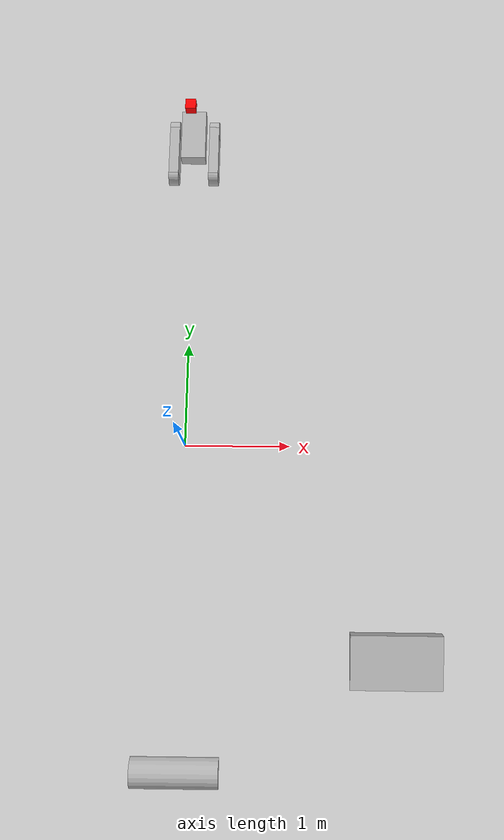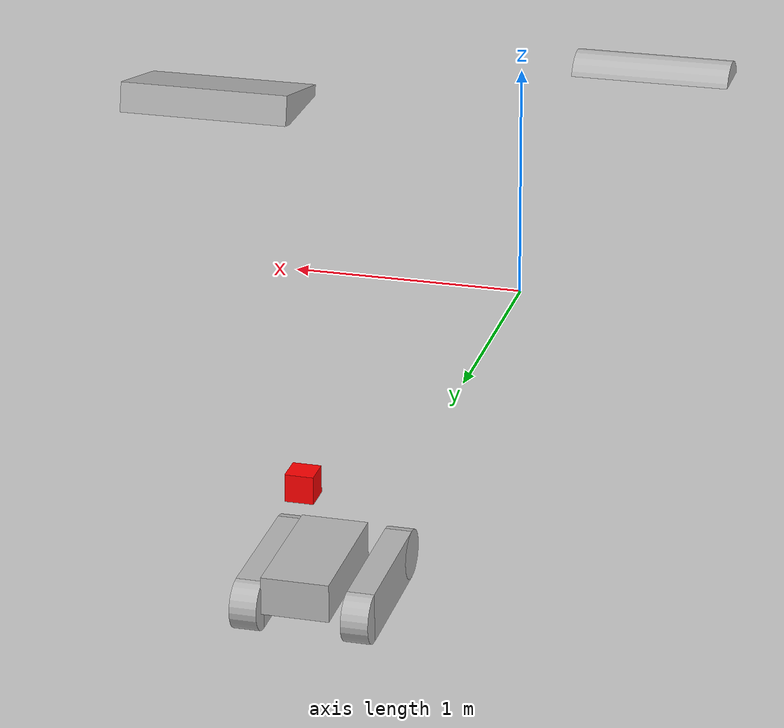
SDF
<?xml version="1.0" ?>
<sdf version="1.6">
    <world name="default">
        <gui>
            <plugin name="keyboard" filename="libKeyboardGUIPlugin.so"/>
        </gui>

        <include>
            <uri>model://sun</uri>
        </include>

        <include>
            <uri>model://ground_plane</uri>
        </include>

        <include>
            <uri>model://simple_tracked</uri>
        </include>

        <model name="cylinder_obstacle">
            <static>true</static>
            <pose>0 -3 -0.06 0 0 0</pose>
            <link name="cylinder">
                <collision name="cylinder_collision">
                    <pose frame="">0 0 0 0 1.570796327 0</pose>
                    <geometry>
                        <cylinder>
                            <radius>0.15</radius>
                            <length>0.8</length>
                        </cylinder>
                    </geometry>
                    <surface>
                        <friction>
                            <ode>
                                <mu>1</mu>
                            </ode>
                        </friction>
                    </surface>
                </collision>
                <visual name="cylinder_visual">
                    <pose frame="">0 0 0 0 1.570796327 0</pose>
                    <geometry>
                        <cylinder>
                            <radius>0.15</radius>
                            <length>0.8</length>
                        </cylinder>
                    </geometry>
                </visual>
            </link>
        </model>

        <model name="box_obstacle">
            <static>true</static>
            <pose>2 -2 0.028 1.7821 0 0</pose>
            <link name="box">
                <collision name="box_collision">
                    <pose frame="">0 0 0 0 0 0</pose>
                    <geometry>
                        <box>
                            <size>0.85 0.15 0.50</size>
                        </box>
                    </geometry>
                    <surface>
                        <friction>
                            <ode>
                                <mu>1</mu>
                            </ode>
                        </friction>
                    </surface>
                </collision>
                <visual name="box_visual">
                    <pose frame="">0 0 0 0 0 0</pose>
                    <geometry>
                        <box>
                            <size>0.85 0.15 0.50</size>
                        </box>
                    </geometry>
                </visual>
            </link>
        </model>
    </world>
</sdf>

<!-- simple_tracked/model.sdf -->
<sdf version="1.6">

    <model name="simple_tracked">

        <pose frame=''>0 3 0.1 0 0 -1.5708</pose>

        <link name='base_link'>
            <pose frame=''>0 0 0  0 0 0</pose>
            <inertial>
                <pose frame=''>-0.122 0 0.118  0 0 0</pose>
                <mass>0.1</mass>
                <inertia>
                    <ixx>0.010</ixx>
                    <ixy>0</ixy>
                    <ixz>0</ixz>
                    <iyy>0.034</iyy>
                    <iyz>0</iyz>
                    <izz>0.030</izz>
                </inertia>
            </inertial>
            <collision name='base_link_collision'>
                <pose frame=''>-0.122 0 0.118  0 0 0</pose>
                <geometry>
                    <box>
                        <size>0.50017 0.24093 0.139</size>
                    </box>
                </geometry>
            </collision>
            <visual name='base_link_visual'>
                <pose frame=''>-0.122 0 0.118  0 0 0</pose>
                <geometry>
                    <box>
                        <size>0.50017 0.24093 0.139</size>
                    </box>
                </geometry>
            </visual>
            <self_collide>0</self_collide>
            <gravity>1</gravity>
            <kinematic>0</kinematic>
        </link>

        <link name='load'>
            <pose frame=''>-0.25 0 0.5  0 0 0</pose>
            <inertial>
                <mass>13.0</mass>
                <inertia>
                    <ixx>0.10019</ixx>
                    <ixy>0</ixy>
                    <ixz>0</ixz>
                    <iyy>0.345043</iyy>
                    <iyz>0</iyz>
                    <izz>0.302044</izz>
                </inertia>
            </inertial>
            <collision name='load_collision'>
                <geometry>
                    <box>
                        <size>0.1 0.1 0.1</size>
                    </box>
                </geometry>
            </collision>
            <visual name='load_visual'>
                <geometry>
                    <box>
                        <size>0.1 0.1 0.1</size>
                    </box>
                </geometry>
                <material>
                    <diffuse>
                        1 0 0 1
                    </diffuse>
                </material>
            </visual>
            <self_collide>0</self_collide>
            <gravity>1</gravity>
            <kinematic>0</kinematic>
        </link>
        <joint name='load_j' type='fixed'>
            <child>load</child>
            <parent>base_link</parent>
        </joint>

        <link name='left_track'>
            <pose frame=''>0 0.1985 0  0 0 0</pose>
            <inertial>
                <pose frame=''>0 0 0.0141  0 0 0</pose>
                <mass>6.06</mass>
                <inertia>
                    <ixx>0.002731</ixx>
                    <ixy>0</ixy>
                    <ixz>0</ixz>
                    <iyy>0.032554</iyy>
                    <iyz>1.5e-05</iyz>
                    <izz>0.031391</izz>
                </inertia>
            </inertial>
            <collision name='left_track_collision'>
                <pose frame=''>0 0 0.01855  1.5708 0 1.5708</pose>
                <geometry>
                    <box>
                        <size>0.09728 0.18094 0.5</size>
                    </box>
                </geometry>
                <surface>
                    <friction>
                        <ode>
                            <mu>0.7</mu>
                            <mu2>150</mu2>
                            <fdir1>0 1 0</fdir1>
                        </ode>
                    </friction>
                </surface>
            </collision>
            <collision name='left_track_collision_1'>
                <pose frame=''>0.25 0 0.01855  1.5708 0 0</pose>
                <geometry>
                    <cylinder>
                        <length>0.09728</length>
                        <radius>0.09047</radius>
                    </cylinder>
                </geometry>
                <surface>
                    <friction>
                        <ode>
                            <mu>0.7</mu>
                            <mu2>150</mu2>
                            <fdir1>0 1 0</fdir1>
                        </ode>
                    </friction>
                </surface>
            </collision>
            <collision name='left_track_collision_2'>
                <pose frame=''>-0.25 0 0.01855  1.5708 0 0</pose>
                <geometry>
                    <cylinder>
                        <length>0.09728</length>
                        <radius>0.09047</radius>
                    </cylinder>
                </geometry>
                <surface>
                    <friction>
                        <ode>
                            <mu>0.7</mu>
                            <mu2>150</mu2>
                            <fdir1>0 1 0</fdir1>
                        </ode>
                    </friction>
                </surface>
            </collision>
            <visual name='left_track_visual'>
                <pose frame=''>0 0 0.01855  1.5708 0 1.5708</pose>
                <geometry>
                    <box>
                        <size>0.09728 0.18094 0.5</size>
                    </box>
                </geometry>
            </visual>
            <visual name='left_track_visual_1'>
                <pose frame=''>0.25 0 0.01855  1.5708 0 0</pose>
                <geometry>
                    <cylinder>
                        <length>0.09728</length>
                        <radius>0.09047</radius>
                    </cylinder>
                </geometry>
            </visual>
            <visual name='left_track_visual_2'>
                <pose frame=''>-0.25 0 0.01855  1.5708 0 0</pose>
                <geometry>
                    <cylinder>
                        <length>0.09728</length>
                        <radius>0.09047</radius>
                    </cylinder>
                </geometry>
            </visual>
            <gravity>1</gravity>
            <kinematic>0</kinematic>
        </link>
        <joint name='left_track_j' type='fixed'>
            <child>left_track</child>
            <parent>base_link</parent>
        </joint>

        <link name='right_track'>
            <pose frame=''>0 -0.1985 0  0 0 0</pose>
            <inertial>
                <pose frame=''>0 0 0.0141  0 0 0</pose>
                <mass>6.06</mass>
                <inertia>
                    <ixx>0.002731</ixx>
                    <ixy>0</ixy>
                    <ixz>0</ixz>
                    <iyy>0.032554</iyy>
                    <iyz>1.5e-05</iyz>
                    <izz>0.031391</izz>
                </inertia>
            </inertial>
            <collision name='right_track_collision'>
                <pose frame=''>0 0 0.01855  1.5708 0 1.5708</pose>
                <geometry>
                    <box>
                        <size>0.09728 0.18094 0.5</size>
                    </box>
                </geometry>
                <surface>
                    <friction>
                        <ode>
                            <mu>0.7</mu>
                            <mu2>150</mu2>
                            <fdir1>0 1 0</fdir1>
                        </ode>
                    </friction>
                </surface>
            </collision>
            <collision name='right_track_collision_1'>
                <pose frame=''>0.25 0 0.01855  1.5708 0 0</pose>
                <geometry>
                    <cylinder>
                        <length>0.09728</length>
                        <radius>0.09047</radius>
                    </cylinder>
                </geometry>
                <surface>
                    <friction>
                        <ode>
                            <mu>0.7</mu>
                            <mu2>150</mu2>
                            <fdir1>0 1 0</fdir1>
                        </ode>
                    </friction>
                </surface>
            </collision>
            <collision name='right_track_collision_2'>
                <pose frame=''>-0.25 0 0.01855  1.5708 0 0</pose>
                <geometry>
                    <cylinder>
                        <length>0.09728</length>
                        <radius>0.09047</radius>
                    </cylinder>
                </geometry>
                <surface>
                    <friction>
                        <ode>
                            <mu>0.7</mu>
                            <mu2>150</mu2>
                            <fdir1>0 1 0</fdir1>
                        </ode>
                    </friction>
                </surface>
            </collision>
            <visual name='right_track_visual'>
                <pose frame=''>0 0 0.01855  1.5708 0 1.5708</pose>
                <geometry>
                    <box>
                        <size>0.09728 0.18094 0.5</size>
                    </box>
                </geometry>
            </visual>
            <visual name='right_track_visual_1'>
                <pose frame=''>0.25 0 0.01855  1.5708 0 0</pose>
                <geometry>
                    <cylinder>
                        <length>0.09728</length>
                        <radius>0.09047</radius>
                    </cylinder>
                </geometry>
            </visual>
            <visual name='right_track_visual_2'>
                <pose frame=''>-0.25 0 0.01855  1.5708 0 0</pose>
                <geometry>
                    <cylinder>
                        <length>0.09728</length>
                        <radius>0.09047</radius>
                    </cylinder>
                </geometry>
            </visual>
            <gravity>1</gravity>
            <kinematic>0</kinematic>
        </link>
        <joint name='right_track_j' type='fixed'>
            <child>right_track</child>
            <parent>base_link</parent>
        </joint>

        <plugin filename="libSimpleTrackedVehiclePlugin.so" name="simple_tracked_vehicle">
            <body>base_link</body>
            <left_track>left_track</left_track>
            <right_track>right_track</right_track>
            <track_mu>2</track_mu>
            <track_mu2>0.5</track_mu2>
        </plugin>

        <plugin filename="libKeysToCmdVelPlugin.so" name="keyboard_control">
            <publish_as_twist>true</publish_as_twist>
            <cmd_vel_topic>~/simple_tracked/cmd_vel_twist</cmd_vel_topic>
        </plugin>

    </model>
</sdf>
